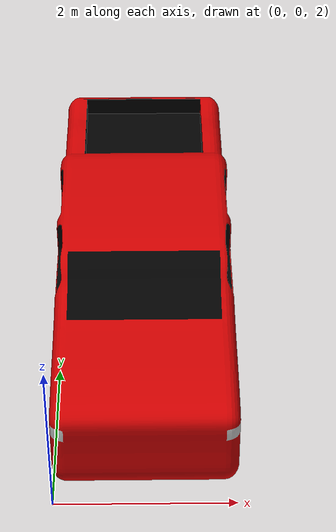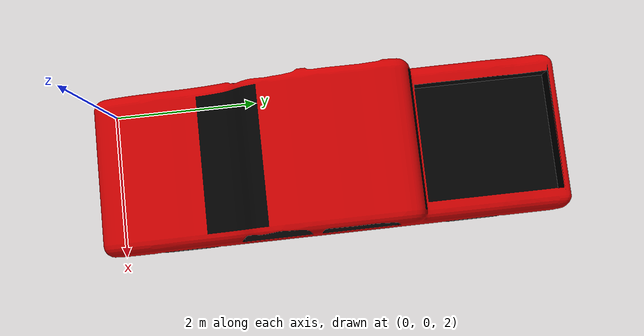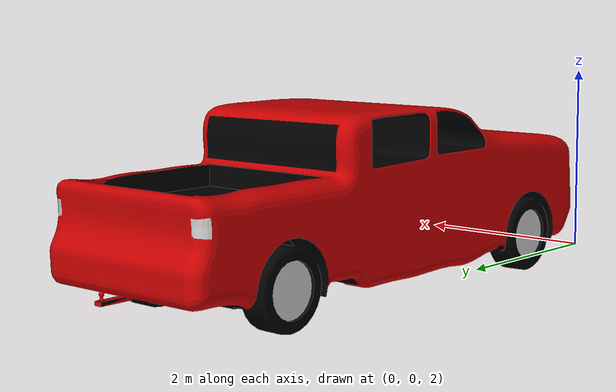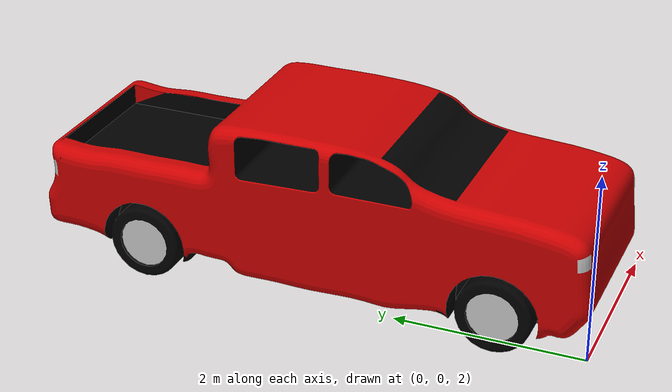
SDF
<?xml version="1.0" ?>
<sdf version="1.5">
  <model name="red_truck">
    <pose>0 0 0 0 0 0</pose>
    <static>true</static>
    <link name="body">
      <visual name="visual">
        <geometry>
          <mesh><uri>model://red_truck/media/redtruck.dae</uri></mesh>
        </geometry>
      </visual>
      <collision name="collision">
        <geometry>
          <mesh><uri>model://red_truck/media/redtruck.dae</uri></mesh>
        </geometry>
      </collision>
    </link>
  </model>
</sdf>
